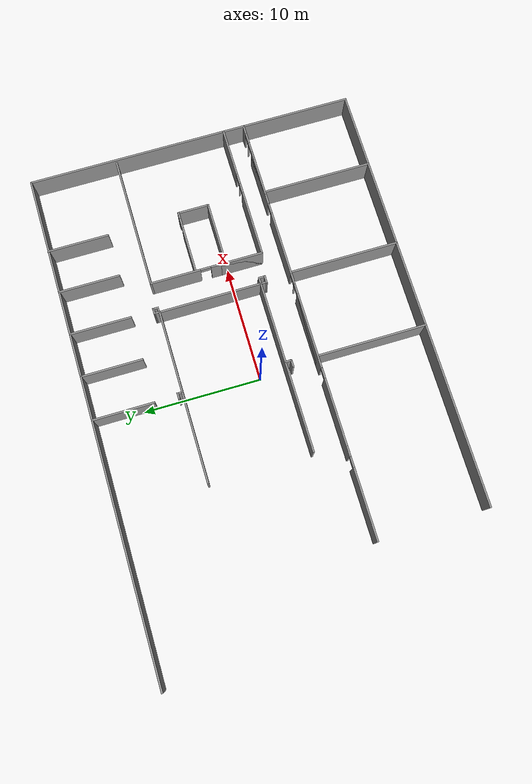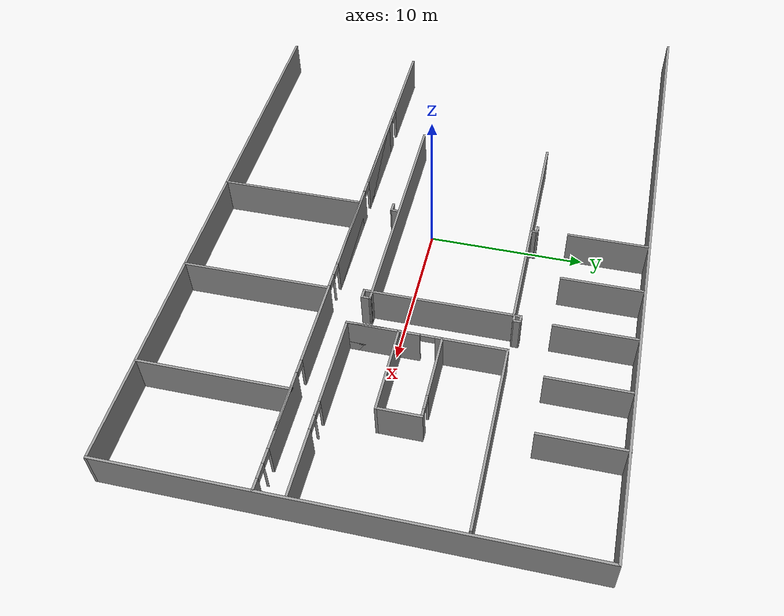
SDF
<sdf version="1.6">
 <model name="L8_4_gazebo">
  <pose>-0.001511 -0.004516 0 0 -0 0</pose>
  <link name="Wall_0">
   <collision name="Wall_0_Collision">
    <geometry><box><size>43 0.15 2.5</size></box></geometry>
    <pose>0 0 1.25 0 -0 0</pose>
   </collision>
   <visual name="Wall_0_Visual">
    <pose>0 0 1.25 0 -0 0</pose>
    <geometry><box><size>43 0.15 2.5</size></box></geometry>
    <material>
     <script><uri>file://media/materials/scripts/gazebo.material</uri><name>Gazebo/Grey</name></script>
     <ambient>1 1 1 1</ambient>
    </material>
    <meta><layer>0</layer></meta>
   </visual>
   <pose>0.064696 14.0387 0 0 -0 0</pose>
  </link>
  <link name="Wall_1">
   <collision name="Wall_1_Collision">
    <geometry><box><size>28.25 0.15 2.5</size></box></geometry>
    <pose>0 0 1.25 0 -0 0</pose>
   </collision>
   <visual name="Wall_1_Visual">
    <pose>0 0 1.25 0 -0 0</pose>
    <geometry><box><size>28.25 0.15 2.5</size></box></geometry>
    <material>
     <script><uri>file://media/materials/scripts/gazebo.material</uri><name>Gazebo/Grey</name></script>
     <ambient>1 1 1 1</ambient>
    </material>
    <meta><layer>0</layer></meta>
   </visual>
   <pose>21.4897 -0.011288 0 0 -0 -1.5708</pose>
  </link>
  <link name="Wall_102">
   <collision name="Wall_102_Collision">
    <geometry><box><size>9.25 0.15 2.5</size></box></geometry>
    <pose>0 0 1.25 0 -0 0</pose>
   </collision>
   <visual name="Wall_102_Visual">
    <pose>0 0 1.25 0 -0 0</pose>
    <geometry><box><size>9.25 0.15 2.5</size></box></geometry>
    <material>
     <script><uri>file://media/materials/scripts/gazebo.material</uri><name>Gazebo/Grey</name></script>
     <ambient>1 1 1 1</ambient>
    </material>
    <meta><layer>0</layer></meta>
   </visual>
   <pose>15.0681 -9.50681 0 0 -0 1.5708</pose>
  </link>
  <link name="Wall_16">
   <collision name="Wall_16_Collision">
    <geometry><box><size>11.5 0.15 2.5</size></box></geometry>
    <pose>0 0 1.25 0 -0 0</pose>
   </collision>
   <visual name="Wall_16_Visual">
    <pose>0 0 1.25 0 -0 0</pose>
    <geometry><box><size>11.5 0.15 2.5</size></box></geometry>
    <material>
     <script><uri>file://media/materials/scripts/gazebo.material</uri><name>Gazebo/Grey</name></script>
     <ambient>1 1 1 1</ambient>
    </material>
    <meta><layer>0</layer></meta>
   </visual>
   <pose>15.5346 6.59842 0 0 -0 3.14159</pose>
  </link>
  <link name="Wall_17">
   <pose>9.85961 1.79842 0 0 -0 -1.5708</pose>
   <visual name="Wall_17_Visual_0">
    <pose>-2.69913 0 1.25 0 -0 0</pose>
    <geometry><box><size>4.35173 0.15 2.5</size></box></geometry>
    <material>
     <script><uri>file://media/materials/scripts/gazebo.material</uri><name>Gazebo/Grey</name></script>
     <ambient>1 1 1 1</ambient>
    </material>
    <meta><layer>0</layer></meta>
   </visual>
   <collision name="Wall_17_Collision_0">
    <geometry><box><size>4.35173 0.15 2.5</size></box></geometry>
    <pose>-2.69913 0 1.25 0 -0 0</pose>
   </collision>
   <visual name="Wall_17_Visual_1">
    <pose>2.62587 0 1.25 0 -0 0</pose>
    <geometry><box><size>4.49827 0.15 2.5</size></box></geometry>
    <material>
     <script><uri>file://media/materials/scripts/gazebo.material</uri><name>Gazebo/Grey</name></script>
     <ambient>1 1 1 1</ambient>
    </material>
    <meta><layer>0</layer></meta>
   </visual>
   <collision name="Wall_17_Collision_1">
    <geometry><box><size>4.49827 0.15 2.5</size></box></geometry>
    <pose>2.62587 0 1.25 0 -0 0</pose>
   </collision>
   <visual name="Wall_17_Visual_2">
    <pose>3.06821 0 1.25 0 -0 0</pose>
    <geometry><box><size>3.61358 0.15 2.5</size></box></geometry>
    <material>
     <script><uri>file://media/materials/scripts/gazebo.material</uri><name>Gazebo/Grey</name></script>
     <ambient>1 1 1 1</ambient>
    </material>
    <meta><layer>0</layer></meta>
   </visual>
   <collision name="Wall_17_Collision_2">
    <geometry><box><size>3.61358 0.15 2.5</size></box></geometry>
    <pose>3.06821 0 1.25 0 -0 0</pose>
   </collision>
   <visual name="Wall_17_Visual_3">
    <pose>-0.080923 0 2.25 0 -0 0</pose>
    <geometry><box><size>0.884688 0.15 0.5</size></box></geometry>
    <material>
     <script><uri>file://media/materials/scripts/gazebo.material</uri><name>Gazebo/Grey</name></script>
     <ambient>1 1 1 1</ambient>
    </material>
    <meta><layer>0</layer></meta>
   </visual>
   <collision name="Wall_17_Collision_3">
    <geometry><box><size>0.884688 0.15 0.5</size></box></geometry>
    <pose>-0.080923 0 2.25 0 -0 0</pose>
   </collision>
  </link>
  <link name="Wall_18">
   <pose>15.6596 -3.00158 0 0 -0 0</pose>
   <visual name="Wall_18_Visual_0">
    <pose>-3.00399 0 1.25 0 -0 0</pose>
    <geometry><box><size>5.74203 0.15 2.5</size></box></geometry>
    <material>
     <script><uri>file://media/materials/scripts/gazebo.material</uri><name>Gazebo/Grey</name></script>
     <ambient>1 1 1 1</ambient>
    </material>
    <meta><layer>0</layer></meta>
   </visual>
   <collision name="Wall_18_Collision_0">
    <geometry><box><size>5.74203 0.15 2.5</size></box></geometry>
    <pose>-3.00399 0 1.25 0 -0 0</pose>
   </collision>
   <visual name="Wall_18_Visual_1">
    <pose>0.770714 0 1.25 0 -0 0</pose>
    <geometry><box><size>0.007373 0.15 2.5</size></box></geometry>
    <material>
     <script><uri>file://media/materials/scripts/gazebo.material</uri><name>Gazebo/Grey</name></script>
     <ambient>1 1 1 1</ambient>
    </material>
    <meta><layer>0</layer></meta>
   </visual>
   <collision name="Wall_18_Collision_1">
    <geometry><box><size>0.007373 0.15 2.5</size></box></geometry>
    <pose>0.770714 0 1.25 0 -0 0</pose>
   </collision>
   <visual name="Wall_18_Visual_2">
    <pose>3.7747 0 1.25 0 -0 0</pose>
    <geometry><box><size>4.2006 0.15 2.5</size></box></geometry>
    <material>
     <script><uri>file://media/materials/scripts/gazebo.material</uri><name>Gazebo/Grey</name></script>
     <ambient>1 1 1 1</ambient>
    </material>
    <meta><layer>0</layer></meta>
   </visual>
   <collision name="Wall_18_Collision_2">
    <geometry><box><size>4.2006 0.15 2.5</size></box></geometry>
    <pose>3.7747 0 1.25 0 -0 0</pose>
   </collision>
   <visual name="Wall_18_Visual_3">
    <pose>0.317027 0 2.25 0 -0 0</pose>
    <geometry><box><size>0.9 0.15 0.5</size></box></geometry>
    <material>
     <script><uri>file://media/materials/scripts/gazebo.material</uri><name>Gazebo/Grey</name></script>
     <ambient>1 1 1 1</ambient>
    </material>
    <meta><layer>0</layer></meta>
   </visual>
   <collision name="Wall_18_Collision_3">
    <geometry><box><size>0.9 0.15 0.5</size></box></geometry>
    <pose>0.317027 0 2.25 0 -0 0</pose>
   </collision>
   <visual name="Wall_18_Visual_4">
    <pose>1.2244 0 2.25 0 -0 0</pose>
    <geometry><box><size>0.9 0.15 0.5</size></box></geometry>
    <material>
     <script><uri>file://media/materials/scripts/gazebo.material</uri><name>Gazebo/Grey</name></script>
     <ambient>1 1 1 1</ambient>
    </material>
    <meta><layer>0</layer></meta>
   </visual>
   <collision name="Wall_18_Collision_4">
    <geometry><box><size>0.9 0.15 0.5</size></box></geometry>
    <pose>1.2244 0 2.25 0 -0 0</pose>
   </collision>
  </link>
  <link name="Wall_2">
   <collision name="Wall_2_Collision">
    <geometry><box><size>37 0.15 2.5</size></box></geometry>
    <pose>0 0 1.25 0 -0 0</pose>
   </collision>
   <visual name="Wall_2_Visual">
    <pose>0 0 1.25 0 -0 0</pose>
    <geometry><box><size>37 0.15 2.5</size></box></geometry>
    <material>
     <script><uri>file://media/materials/scripts/gazebo.material</uri><name>Gazebo/Grey</name></script>
     <ambient>1 1 1 1</ambient>
    </material>
    <meta><layer>0</layer></meta>
   </visual>
   <pose>3.0647 -14.0613 0 0 -0 3.14159</pose>
  </link>
  <link name="Wall_20">
   <pose>3.04545 -4.80901 0 0 -0 0</pose>
   <visual name="Wall_20_Visual_0">
    <pose>-15.485 0 1.25 0 -0 0</pose>
    <geometry><box><size>6.02996 0.15 2.5</size></box></geometry>
    <material>
     <script><uri>file://media/materials/scripts/gazebo.material</uri><name>Gazebo/Grey</name></script>
     <ambient>1 1 1 1</ambient>
    </material>
    <meta><layer>0</layer></meta>
   </visual>
   <collision name="Wall_20_Collision_0">
    <geometry><box><size>6.02996 0.15 2.5</size></box></geometry>
    <pose>-15.485 0 1.25 0 -0 0</pose>
   </collision>
   <visual name="Wall_20_Visual_1">
    <pose>-8.25445 0 1.25 0 -0 0</pose>
    <geometry><box><size>6.63119 0.15 2.5</size></box></geometry>
    <material>
     <script><uri>file://media/materials/scripts/gazebo.material</uri><name>Gazebo/Grey</name></script>
     <ambient>1 1 1 1</ambient>
    </material>
    <meta><layer>0</layer></meta>
   </visual>
   <collision name="Wall_20_Collision_1">
    <geometry><box><size>6.63119 0.15 2.5</size></box></geometry>
    <pose>-8.25445 0 1.25 0 -0 0</pose>
   </collision>
   <visual name="Wall_20_Visual_2">
    <pose>-7.8121 0 1.25 0 -0 0</pose>
    <geometry><box><size>5.7465 0.15 2.5</size></box></geometry>
    <material>
     <script><uri>file://media/materials/scripts/gazebo.material</uri><name>Gazebo/Grey</name></script>
     <ambient>1 1 1 1</ambient>
    </material>
    <meta><layer>0</layer></meta>
   </visual>
   <collision name="Wall_20_Collision_2">
    <geometry><box><size>5.7465 0.15 2.5</size></box></geometry>
    <pose>-7.8121 0 1.25 0 -0 0</pose>
   </collision>
   <visual name="Wall_20_Visual_3">
    <pose>-0.757283 0 1.25 0 -0 0</pose>
    <geometry><box><size>6.56314 0.15 2.5</size></box></geometry>
    <material>
     <script><uri>file://media/materials/scripts/gazebo.material</uri><name>Gazebo/Grey</name></script>
     <ambient>1 1 1 1</ambient>
    </material>
    <meta><layer>0</layer></meta>
   </visual>
   <collision name="Wall_20_Collision_3">
    <geometry><box><size>6.56314 0.15 2.5</size></box></geometry>
    <pose>-0.757283 0 1.25 0 -0 0</pose>
   </collision>
   <visual name="Wall_20_Visual_4">
    <pose>-0.314939 0 1.25 0 -0 0</pose>
    <geometry><box><size>5.67845 0.15 2.5</size></box></geometry>
    <material>
     <script><uri>file://media/materials/scripts/gazebo.material</uri><name>Gazebo/Grey</name></script>
     <ambient>1 1 1 1</ambient>
    </material>
    <meta><layer>0</layer></meta>
   </visual>
   <collision name="Wall_20_Collision_4">
    <geometry><box><size>5.67845 0.15 2.5</size></box></geometry>
    <pose>-0.314939 0 1.25 0 -0 0</pose>
   </collision>
   <visual name="Wall_20_Visual_5">
    <pose>3.42797 0 1.25 0 -0 0</pose>
    <geometry><box><size>0.007372 0.15 2.5</size></box></geometry>
    <material>
     <script><uri>file://media/materials/scripts/gazebo.material</uri><name>Gazebo/Grey</name></script>
     <ambient>1 1 1 1</ambient>
    </material>
    <meta><layer>0</layer></meta>
   </visual>
   <collision name="Wall_20_Collision_5">
    <geometry><box><size>0.007372 0.15 2.5</size></box></geometry>
    <pose>3.42797 0 1.25 0 -0 0</pose>
   </collision>
   <visual name="Wall_20_Visual_6">
    <pose>7.17088 0 1.25 0 -0 0</pose>
    <geometry><box><size>5.67845 0.15 2.5</size></box></geometry>
    <material>
     <script><uri>file://media/materials/scripts/gazebo.material</uri><name>Gazebo/Grey</name></script>
     <ambient>1 1 1 1</ambient>
    </material>
    <meta><layer>0</layer></meta>
   </visual>
   <collision name="Wall_20_Collision_6">
    <geometry><box><size>5.67845 0.15 2.5</size></box></geometry>
    <pose>7.17088 0 1.25 0 -0 0</pose>
   </collision>
   <visual name="Wall_20_Visual_7">
    <pose>13.4091 0 1.25 0 -0 0</pose>
    <geometry><box><size>4.99792 0.15 2.5</size></box></geometry>
    <material>
     <script><uri>file://media/materials/scripts/gazebo.material</uri><name>Gazebo/Grey</name></script>
     <ambient>1 1 1 1</ambient>
    </material>
    <meta><layer>0</layer></meta>
   </visual>
   <collision name="Wall_20_Collision_7">
    <geometry><box><size>4.99792 0.15 2.5</size></box></geometry>
    <pose>13.4091 0 1.25 0 -0 0</pose>
   </collision>
   <visual name="Wall_20_Visual_8">
    <pose>13.8514 0 1.25 0 -0 0</pose>
    <geometry><box><size>4.11323 0.15 2.5</size></box></geometry>
    <material>
     <script><uri>file://media/materials/scripts/gazebo.material</uri><name>Gazebo/Grey</name></script>
     <ambient>1 1 1 1</ambient>
    </material>
    <meta><layer>0</layer></meta>
   </visual>
   <collision name="Wall_20_Collision_8">
    <geometry><box><size>4.11323 0.15 2.5</size></box></geometry>
    <pose>13.8514 0 1.25 0 -0 0</pose>
   </collision>
   <visual name="Wall_20_Visual_9">
    <pose>16.8117 0 1.25 0 -0 0</pose>
    <geometry><box><size>0.007373 0.15 2.5</size></box></geometry>
    <material>
     <script><uri>file://media/materials/scripts/gazebo.material</uri><name>Gazebo/Grey</name></script>
     <ambient>1 1 1 1</ambient>
    </material>
    <meta><layer>0</layer></meta>
   </visual>
   <collision name="Wall_20_Collision_9">
    <geometry><box><size>0.007373 0.15 2.5</size></box></geometry>
    <pose>16.8117 0 1.25 0 -0 0</pose>
   </collision>
   <visual name="Wall_20_Visual_10">
    <pose>18.1077 0 1.25 0 -0 0</pose>
    <geometry><box><size>0.784598 0.15 2.5</size></box></geometry>
    <material>
     <script><uri>file://media/materials/scripts/gazebo.material</uri><name>Gazebo/Grey</name></script>
     <ambient>1 1 1 1</ambient>
    </material>
    <meta><layer>0</layer></meta>
   </visual>
   <collision name="Wall_20_Collision_10">
    <geometry><box><size>0.784598 0.15 2.5</size></box></geometry>
    <pose>18.1077 0 1.25 0 -0 0</pose>
   </collision>
   <visual name="Wall_20_Visual_11">
    <pose>-12.0277 0 2.25 0 -0 0</pose>
    <geometry><box><size>0.884688 0.15 0.5</size></box></geometry>
    <material>
     <script><uri>file://media/materials/scripts/gazebo.material</uri><name>Gazebo/Grey</name></script>
     <ambient>1 1 1 1</ambient>
    </material>
    <meta><layer>0</layer></meta>
   </visual>
   <collision name="Wall_20_Collision_11">
    <geometry><box><size>0.884688 0.15 0.5</size></box></geometry>
    <pose>-12.0277 0 2.25 0 -0 0</pose>
   </collision>
   <visual name="Wall_20_Visual_12">
    <pose>-4.49651 0 2.25 0 -0 0</pose>
    <geometry><box><size>0.884688 0.15 0.5</size></box></geometry>
    <material>
     <script><uri>file://media/materials/scripts/gazebo.material</uri><name>Gazebo/Grey</name></script>
     <ambient>1 1 1 1</ambient>
    </material>
    <meta><layer>0</layer></meta>
   </visual>
   <collision name="Wall_20_Collision_12">
    <geometry><box><size>0.884688 0.15 0.5</size></box></geometry>
    <pose>-4.49651 0 2.25 0 -0 0</pose>
   </collision>
   <visual name="Wall_20_Visual_13">
    <pose>-4.49651 0 2.25 0 -0 0</pose>
    <geometry><box><size>0.884688 0.15 0.5</size></box></geometry>
    <material>
     <script><uri>file://media/materials/scripts/gazebo.material</uri><name>Gazebo/Grey</name></script>
     <ambient>1 1 1 1</ambient>
    </material>
    <meta><layer>0</layer></meta>
   </visual>
   <collision name="Wall_20_Collision_13">
    <geometry><box><size>0.884688 0.15 0.5</size></box></geometry>
    <pose>-4.49651 0 2.25 0 -0 0</pose>
   </collision>
   <visual name="Wall_20_Visual_14">
    <pose>2.97429 0 2.25 0 -0 0</pose>
    <geometry><box><size>0.9 0.15 0.5</size></box></geometry>
    <material>
     <script><uri>file://media/materials/scripts/gazebo.material</uri><name>Gazebo/Grey</name></script>
     <ambient>1 1 1 1</ambient>
    </material>
    <meta><layer>0</layer></meta>
   </visual>
   <collision name="Wall_20_Collision_14">
    <geometry><box><size>0.9 0.15 0.5</size></box></geometry>
    <pose>2.97429 0 2.25 0 -0 0</pose>
   </collision>
   <visual name="Wall_20_Visual_15">
    <pose>2.97429 0 2.25 0 -0 0</pose>
    <geometry><box><size>0.9 0.15 0.5</size></box></geometry>
    <material>
     <script><uri>file://media/materials/scripts/gazebo.material</uri><name>Gazebo/Grey</name></script>
     <ambient>1 1 1 1</ambient>
    </material>
    <meta><layer>0</layer></meta>
   </visual>
   <collision name="Wall_20_Collision_15">
    <geometry><box><size>0.9 0.15 0.5</size></box></geometry>
    <pose>2.97429 0 2.25 0 -0 0</pose>
   </collision>
   <visual name="Wall_20_Visual_16">
    <pose>3.88166 0 2.25 0 -0 0</pose>
    <geometry><box><size>0.9 0.15 0.5</size></box></geometry>
    <material>
     <script><uri>file://media/materials/scripts/gazebo.material</uri><name>Gazebo/Grey</name></script>
     <ambient>1 1 1 1</ambient>
    </material>
    <meta><layer>0</layer></meta>
   </visual>
   <collision name="Wall_20_Collision_16">
    <geometry><box><size>0.9 0.15 0.5</size></box></geometry>
    <pose>3.88166 0 2.25 0 -0 0</pose>
   </collision>
   <visual name="Wall_20_Visual_17">
    <pose>10.4525 0 2.25 0 -0 0</pose>
    <geometry><box><size>0.884688 0.15 0.5</size></box></geometry>
    <material>
     <script><uri>file://media/materials/scripts/gazebo.material</uri><name>Gazebo/Grey</name></script>
     <ambient>1 1 1 1</ambient>
    </material>
    <meta><layer>0</layer></meta>
   </visual>
   <collision name="Wall_20_Collision_17">
    <geometry><box><size>0.884688 0.15 0.5</size></box></geometry>
    <pose>10.4525 0 2.25 0 -0 0</pose>
   </collision>
   <visual name="Wall_20_Visual_18">
    <pose>16.358 0 2.25 0 -0 0</pose>
    <geometry><box><size>0.9 0.15 0.5</size></box></geometry>
    <material>
     <script><uri>file://media/materials/scripts/gazebo.material</uri><name>Gazebo/Grey</name></script>
     <ambient>1 1 1 1</ambient>
    </material>
    <meta><layer>0</layer></meta>
   </visual>
   <collision name="Wall_20_Collision_18">
    <geometry><box><size>0.9 0.15 0.5</size></box></geometry>
    <pose>16.358 0 2.25 0 -0 0</pose>
   </collision>
   <visual name="Wall_20_Visual_19">
    <pose>16.358 0 2.25 0 -0 0</pose>
    <geometry><box><size>0.9 0.15 0.5</size></box></geometry>
    <material>
     <script><uri>file://media/materials/scripts/gazebo.material</uri><name>Gazebo/Grey</name></script>
     <ambient>1 1 1 1</ambient>
    </material>
    <meta><layer>0</layer></meta>
   </visual>
   <collision name="Wall_20_Collision_19">
    <geometry><box><size>0.9 0.15 0.5</size></box></geometry>
    <pose>16.358 0 2.25 0 -0 0</pose>
   </collision>
   <visual name="Wall_20_Visual_20">
    <pose>17.2654 0 2.25 0 -0 0</pose>
    <geometry><box><size>0.9 0.15 0.5</size></box></geometry>
    <material>
     <script><uri>file://media/materials/scripts/gazebo.material</uri><name>Gazebo/Grey</name></script>
     <ambient>1 1 1 1</ambient>
    </material>
    <meta><layer>0</layer></meta>
   </visual>
   <collision name="Wall_20_Collision_20">
    <geometry><box><size>0.9 0.15 0.5</size></box></geometry>
    <pose>17.2654 0 2.25 0 -0 0</pose>
   </collision>
  </link>
  <link name="Wall_35">
   <collision name="Wall_35_Collision">
    <geometry><box><size>0.543 0.15 2.5</size></box></geometry>
    <pose>0 0 1.25 0 -0 0</pose>
   </collision>
   <visual name="Wall_35_Visual">
    <pose>0 0 1.25 0 -0 0</pose>
    <geometry><box><size>0.543 0.15 2.5</size></box></geometry>
    <material>
     <script><uri>file://media/materials/scripts/gazebo.material</uri><name>Gazebo/Grey</name></script>
     <ambient>1 1 1 1</ambient>
    </material>
    <meta><layer>0</layer></meta>
   </visual>
   <pose>0.039878 6.92434 0 0 -0 0</pose>
  </link>
  <link name="Wall_36">
   <collision name="Wall_36_Collision">
    <geometry><box><size>0.461188 0.15 2.5</size></box></geometry>
    <pose>0 0 1.25 0 -0 0</pose>
   </collision>
   <visual name="Wall_36_Visual">
    <pose>0 0 1.25 0 -0 0</pose>
    <geometry><box><size>0.461188 0.15 2.5</size></box></geometry>
    <material>
     <script><uri>file://media/materials/scripts/gazebo.material</uri><name>Gazebo/Grey</name></script>
     <ambient>1 1 1 1</ambient>
    </material>
    <meta><layer>0</layer></meta>
   </visual>
   <pose>0.236378 6.77306 0 0 -0 -1.5708</pose>
  </link>
  <link name="Wall_38">
   <collision name="Wall_38_Collision">
    <geometry><box><size>0.560618 0.15 2.5</size></box></geometry>
    <pose>0 0 1.25 0 -0 0</pose>
   </collision>
   <visual name="Wall_38_Visual">
    <pose>0 0 1.25 0 -0 0</pose>
    <geometry><box><size>0.560618 0.15 2.5</size></box></geometry>
    <material>
     <script><uri>file://media/materials/scripts/gazebo.material</uri><name>Gazebo/Grey</name></script>
     <ambient>1 1 1 1</ambient>
    </material>
    <meta><layer>0</layer></meta>
   </visual>
   <pose>7.27186 6.76587 0 0 -0 1.60754</pose>
  </link>
  <link name="Wall_39">
   <collision name="Wall_39_Collision">
    <geometry><box><size>0.547461 0.15 2.5</size></box></geometry>
    <pose>0 0 1.25 0 -0 0</pose>
   </collision>
   <visual name="Wall_39_Visual">
    <pose>0 0 1.25 0 -0 0</pose>
    <geometry><box><size>0.547461 0.15 2.5</size></box></geometry>
    <material>
     <script><uri>file://media/materials/scripts/gazebo.material</uri><name>Gazebo/Grey</name></script>
     <ambient>1 1 1 1</ambient>
    </material>
    <meta><layer>0</layer></meta>
   </visual>
   <pose>7.46304 6.96888 0 0 -0 -0.01085</pose>
  </link>
  <link name="Wall_40">
   <collision name="Wall_40_Collision">
    <geometry><box><size>0.51725 0.15 2.5</size></box></geometry>
    <pose>0 0 1.25 0 -0 0</pose>
   </collision>
   <visual name="Wall_40_Visual">
    <pose>0 0 1.25 0 -0 0</pose>
    <geometry><box><size>0.51725 0.15 2.5</size></box></geometry>
    <material>
     <script><uri>file://media/materials/scripts/gazebo.material</uri><name>Gazebo/Grey</name></script>
     <ambient>1 1 1 1</ambient>
    </material>
    <meta><layer>0</layer></meta>
   </visual>
   <pose>7.66176 6.7831 0 0 -0 -1.5708</pose>
  </link>
  <link name="Wall_41">
   <collision name="Wall_41_Collision">
    <geometry><box><size>0.533903 0.15 2.5</size></box></geometry>
    <pose>0 0 1.25 0 -0 0</pose>
   </collision>
   <visual name="Wall_41_Visual">
    <pose>0 0 1.25 0 -0 0</pose>
    <geometry><box><size>0.533903 0.15 2.5</size></box></geometry>
    <material>
     <script><uri>file://media/materials/scripts/gazebo.material</uri><name>Gazebo/Grey</name></script>
     <ambient>1 1 1 1</ambient>
    </material>
    <meta><layer>0</layer></meta>
   </visual>
   <pose>7.47058 6.57793 0 0 -0 -3.05169</pose>
  </link>
  <link name="Wall_43">
   <collision name="Wall_43_Collision">
    <geometry><box><size>0.663825 0.15 2.5</size></box></geometry>
    <pose>0 0 1.25 0 -0 0</pose>
   </collision>
   <visual name="Wall_43_Visual">
    <pose>0 0 1.25 0 -0 0</pose>
    <geometry><box><size>0.663825 0.15 2.5</size></box></geometry>
    <material>
     <script><uri>file://media/materials/scripts/gazebo.material</uri><name>Gazebo/Grey</name></script>
     <ambient>1 1 1 1</ambient>
    </material>
    <meta><layer>0</layer></meta>
   </visual>
   <pose>7.53629 -2.13696 0 0 -0 0.00631</pose>
  </link>
  <link name="Wall_44">
   <collision name="Wall_44_Collision">
    <geometry><box><size>0.640091 0.15 2.5</size></box></geometry>
    <pose>0 0 1.25 0 -0 0</pose>
   </collision>
   <visual name="Wall_44_Visual">
    <pose>0 0 1.25 0 -0 0</pose>
    <geometry><box><size>0.640091 0.15 2.5</size></box></geometry>
    <material>
     <script><uri>file://media/materials/scripts/gazebo.material</uri><name>Gazebo/Grey</name></script>
     <ambient>1 1 1 1</ambient>
    </material>
    <meta><layer>0</layer></meta>
   </visual>
   <pose>7.79213 -2.38034 0 0 -0 -1.57516</pose>
  </link>
  <link name="Wall_45">
   <collision name="Wall_45_Collision">
    <geometry><box><size>0.660582 0.15 2.5</size></box></geometry>
    <pose>0 0 1.25 0 -0 0</pose>
   </collision>
   <visual name="Wall_45_Visual">
    <pose>0 0 1.25 0 -0 0</pose>
    <geometry><box><size>0.660582 0.15 2.5</size></box></geometry>
    <material>
     <script><uri>file://media/materials/scripts/gazebo.material</uri><name>Gazebo/Grey</name></script>
     <ambient>1 1 1 1</ambient>
    </material>
    <meta><layer>0</layer></meta>
   </visual>
   <pose>7.53253 -2.62697 0 0 -0 -3.13524</pose>
  </link>
  <link name="Wall_46">
   <collision name="Wall_46_Collision">
    <geometry><box><size>0.64002 0.15 2.5</size></box></geometry>
    <pose>0 0 1.25 0 -0 0</pose>
   </collision>
   <visual name="Wall_46_Visual">
    <pose>0 0 1.25 0 -0 0</pose>
    <geometry><box><size>0.64002 0.15 2.5</size></box></geometry>
    <material>
     <script><uri>file://media/materials/scripts/gazebo.material</uri><name>Gazebo/Grey</name></script>
     <ambient>1 1 1 1</ambient>
    </material>
    <meta><layer>0</layer></meta>
   </visual>
   <pose>7.27832 -2.38359 0 0 -0 1.56643</pose>
  </link>
  <link name="Wall_49">
   <collision name="Wall_49_Collision">
    <geometry><box><size>0.659222 0.15 2.5</size></box></geometry>
    <pose>0 0 1.25 0 -0 0</pose>
   </collision>
   <visual name="Wall_49_Visual">
    <pose>0 0 1.25 0 -0 0</pose>
    <geometry><box><size>0.659222 0.15 2.5</size></box></geometry>
    <material>
     <script><uri>file://media/materials/scripts/gazebo.material</uri><name>Gazebo/Grey</name></script>
     <ambient>1 1 1 1</ambient>
    </material>
    <meta><layer>0</layer></meta>
   </visual>
   <pose>0.050028 -2.63251 0 0 -0 0.006368</pose>
  </link>
  <link name="Wall_50">
   <collision name="Wall_50_Collision">
    <geometry><box><size>0.633272 0.15 2.5</size></box></geometry>
    <pose>0 0 1.25 0 -0 0</pose>
   </collision>
   <visual name="Wall_50_Visual">
    <pose>0 0 1.25 0 -0 0</pose>
    <geometry><box><size>0.633272 0.15 2.5</size></box></geometry>
    <material>
     <script><uri>file://media/materials/scripts/gazebo.material</uri><name>Gazebo/Grey</name></script>
     <ambient>1 1 1 1</ambient>
    </material>
    <meta><layer>0</layer></meta>
   </visual>
   <pose>0.304634 -2.38925 0 0 -0 1.5708</pose>
  </link>
  <link name="Wall_57">
   <collision name="Wall_57_Collision">
    <geometry><box><size>14.75 0.15 2.5</size></box></geometry>
    <pose>0 0 1.25 0 -0 0</pose>
   </collision>
   <visual name="Wall_57_Visual">
    <pose>0 0 1.25 0 -0 0</pose>
    <geometry><box><size>14.75 0.15 2.5</size></box></geometry>
    <material>
     <script><uri>file://media/materials/scripts/gazebo.material</uri><name>Gazebo/Grey</name></script>
     <ambient>1 1 1 1</ambient>
    </material>
    <meta><layer>0</layer></meta>
   </visual>
   <pose>-0.039431 6.53979 0 0 -0 0</pose>
  </link>
  <link name="Wall_58">
   <collision name="Wall_58_Collision">
    <geometry><box><size>8.82839 0.15 2.5</size></box></geometry>
    <pose>0 0 1.25 0 -0 0</pose>
   </collision>
   <visual name="Wall_58_Visual">
    <pose>0 0 1.25 0 -0 0</pose>
    <geometry><box><size>8.82839 0.15 2.5</size></box></geometry>
    <material>
     <script><uri>file://media/materials/scripts/gazebo.material</uri><name>Gazebo/Grey</name></script>
     <ambient>1 1 1 1</ambient>
    </material>
    <meta><layer>0</layer></meta>
   </visual>
   <pose>7.26998 2.2006 0 0 -0 -1.56863</pose>
  </link>
  <link name="Wall_59">
   <collision name="Wall_59_Collision">
    <geometry><box><size>14.75 0.15 2.5</size></box></geometry>
    <pose>0 0 1.25 0 -0 0</pose>
   </collision>
   <visual name="Wall_59_Visual">
    <pose>0 0 1.25 0 -0 0</pose>
    <geometry><box><size>14.75 0.15 2.5</size></box></geometry>
    <material>
     <script><uri>file://media/materials/scripts/gazebo.material</uri><name>Gazebo/Grey</name></script>
     <ambient>1 1 1 1</ambient>
    </material>
    <meta><layer>0</layer></meta>
   </visual>
   <pose>-0.020612 -2.13858 0 0 -0 3.14159</pose>
  </link>
  <link name="Wall_70">
   <pose>12.5953 2.74058 0 0 -0 0</pose>
   <visual name="Wall_70_Visual_0">
    <pose>-0.733391 0 1.25 0 -0 0</pose>
    <geometry><box><size>4.03322 0.15 2.5</size></box></geometry>
    <material>
     <script><uri>file://media/materials/scripts/gazebo.material</uri><name>Gazebo/Grey</name></script>
     <ambient>1 1 1 1</ambient>
    </material>
    <meta><layer>0</layer></meta>
   </visual>
   <collision name="Wall_70_Collision_0">
    <geometry><box><size>4.03322 0.15 2.5</size></box></geometry>
    <pose>-0.733391 0 1.25 0 -0 0</pose>
   </collision>
   <visual name="Wall_70_Visual_1">
    <pose>2.46661 0 1.25 0 -0 0</pose>
    <geometry><box><size>0.566782 0.15 2.5</size></box></geometry>
    <material>
     <script><uri>file://media/materials/scripts/gazebo.material</uri><name>Gazebo/Grey</name></script>
     <ambient>1 1 1 1</ambient>
    </material>
    <meta><layer>0</layer></meta>
   </visual>
   <collision name="Wall_70_Collision_1">
    <geometry><box><size>0.566782 0.15 2.5</size></box></geometry>
    <pose>2.46661 0 1.25 0 -0 0</pose>
   </collision>
   <visual name="Wall_70_Visual_2">
    <pose>1.73322 0 2.25 0 -0 0</pose>
    <geometry><box><size>0.9 0.15 0.5</size></box></geometry>
    <material>
     <script><uri>file://media/materials/scripts/gazebo.material</uri><name>Gazebo/Grey</name></script>
     <ambient>1 1 1 1</ambient>
    </material>
    <meta><layer>0</layer></meta>
   </visual>
   <collision name="Wall_70_Collision_2">
    <geometry><box><size>0.9 0.15 0.5</size></box></geometry>
    <pose>1.73322 0 2.25 0 -0 0</pose>
   </collision>
  </link>
  <link name="Wall_71">
   <collision name="Wall_71_Collision">
    <geometry><box><size>2.75 0.15 2.5</size></box></geometry>
    <pose>0 0 1.25 0 -0 0</pose>
   </collision>
   <visual name="Wall_71_Visual">
    <pose>0 0 1.25 0 -0 0</pose>
    <geometry><box><size>2.75 0.15 2.5</size></box></geometry>
    <material>
     <script><uri>file://media/materials/scripts/gazebo.material</uri><name>Gazebo/Grey</name></script>
     <ambient>1 1 1 1</ambient>
    </material>
    <meta><layer>0</layer></meta>
   </visual>
   <pose>15.2703 1.44057 0 0 -0 -1.5708</pose>
  </link>
  <link name="Wall_72">
   <collision name="Wall_72_Collision">
    <geometry><box><size>5.5 0.15 2.5</size></box></geometry>
    <pose>0 0 1.25 0 -0 0</pose>
   </collision>
   <visual name="Wall_72_Visual">
    <pose>0 0 1.25 0 -0 0</pose>
    <geometry><box><size>5.5 0.15 2.5</size></box></geometry>
    <material>
     <script><uri>file://media/materials/scripts/gazebo.material</uri><name>Gazebo/Grey</name></script>
     <ambient>1 1 1 1</ambient>
    </material>
    <meta><layer>0</layer></meta>
   </visual>
   <pose>12.5953 0.140575 0 0 -0 3.14159</pose>
  </link>
  <link name="Wall_82">
   <collision name="Wall_82_Collision">
    <geometry><box><size>5.25 0.15 2.5</size></box></geometry>
    <pose>0 0 1.25 0 -0 0</pose>
   </collision>
   <visual name="Wall_82_Visual">
    <pose>0 0 1.25 0 -0 0</pose>
    <geometry><box><size>5.25 0.15 2.5</size></box></geometry>
    <material>
     <script><uri>file://media/materials/scripts/gazebo.material</uri><name>Gazebo/Grey</name></script>
     <ambient>1 1 1 1</ambient>
    </material>
    <meta><layer>0</layer></meta>
   </visual>
   <pose>0.057554 11.477 0 0 -0 -1.5708</pose>
  </link>
  <link name="Wall_84">
   <collision name="Wall_84_Collision">
    <geometry><box><size>5.25 0.15 2.5</size></box></geometry>
    <pose>0 0 1.25 0 -0 0</pose>
   </collision>
   <visual name="Wall_84_Visual">
    <pose>0 0 1.25 0 -0 0</pose>
    <geometry><box><size>5.25 0.15 2.5</size></box></geometry>
    <material>
     <script><uri>file://media/materials/scripts/gazebo.material</uri><name>Gazebo/Grey</name></script>
     <ambient>1 1 1 1</ambient>
    </material>
    <meta><layer>0</layer></meta>
   </visual>
   <pose>3.77967 11.477 0 0 -0 -1.5708</pose>
  </link>
  <link name="Wall_86">
   <collision name="Wall_86_Collision">
    <geometry><box><size>5.25 0.15 2.5</size></box></geometry>
    <pose>0 0 1.25 0 -0 0</pose>
   </collision>
   <visual name="Wall_86_Visual">
    <pose>0 0 1.25 0 -0 0</pose>
    <geometry><box><size>5.25 0.15 2.5</size></box></geometry>
    <material>
     <script><uri>file://media/materials/scripts/gazebo.material</uri><name>Gazebo/Grey</name></script>
     <ambient>1 1 1 1</ambient>
    </material>
    <meta><layer>0</layer></meta>
   </visual>
   <pose>7.50178 11.477 0 0 -0 -1.5708</pose>
  </link>
  <link name="Wall_88">
   <collision name="Wall_88_Collision">
    <geometry><box><size>5.25 0.15 2.5</size></box></geometry>
    <pose>0 0 1.25 0 -0 0</pose>
   </collision>
   <visual name="Wall_88_Visual">
    <pose>0 0 1.25 0 -0 0</pose>
    <geometry><box><size>5.25 0.15 2.5</size></box></geometry>
    <material>
     <script><uri>file://media/materials/scripts/gazebo.material</uri><name>Gazebo/Grey</name></script>
     <ambient>1 1 1 1</ambient>
    </material>
    <meta><layer>0</layer></meta>
   </visual>
   <pose>11.2754 11.4941 0 0 -0 -1.5708</pose>
  </link>
  <link name="Wall_90">
   <collision name="Wall_90_Collision">
    <geometry><box><size>5.25 0.15 2.5</size></box></geometry>
    <pose>0 0 1.25 0 -0 0</pose>
   </collision>
   <visual name="Wall_90_Visual">
    <pose>0 0 1.25 0 -0 0</pose>
    <geometry><box><size>5.25 0.15 2.5</size></box></geometry>
    <material>
     <script><uri>file://media/materials/scripts/gazebo.material</uri><name>Gazebo/Grey</name></script>
     <ambient>1 1 1 1</ambient>
    </material>
    <meta><layer>0</layer></meta>
   </visual>
   <pose>15.0146 11.5113 0 0 -0 -1.5708</pose>
  </link>
  <link name="Wall_96">
   <collision name="Wall_96_Collision">
    <geometry><box><size>9.25 0.15 2.5</size></box></geometry>
    <pose>0 0 1.25 0 -0 0</pose>
   </collision>
   <visual name="Wall_96_Visual">
    <pose>0 0 1.25 0 -0 0</pose>
    <geometry><box><size>9.25 0.15 2.5</size></box></geometry>
    <material>
     <script><uri>file://media/materials/scripts/gazebo.material</uri><name>Gazebo/Grey</name></script>
     <ambient>1 1 1 1</ambient>
    </material>
    <meta><layer>0</layer></meta>
   </visual>
   <pose>0.057111 -9.50681 0 0 -0 1.5708</pose>
  </link>
  <link name="Wall_98">
   <collision name="Wall_98_Collision">
    <geometry><box><size>9.25 0.15 2.5</size></box></geometry>
    <pose>0 0 1.25 0 -0 0</pose>
   </collision>
   <visual name="Wall_98_Visual">
    <pose>0 0 1.25 0 -0 0</pose>
    <geometry><box><size>9.25 0.15 2.5</size></box></geometry>
    <material>
     <script><uri>file://media/materials/scripts/gazebo.material</uri><name>Gazebo/Grey</name></script>
     <ambient>1 1 1 1</ambient>
    </material>
    <meta><layer>0</layer></meta>
   </visual>
   <pose>7.53982 -9.50681 0 0 -0 1.5708</pose>
  </link>
  <static>1</static>
 </model>
</sdf>
